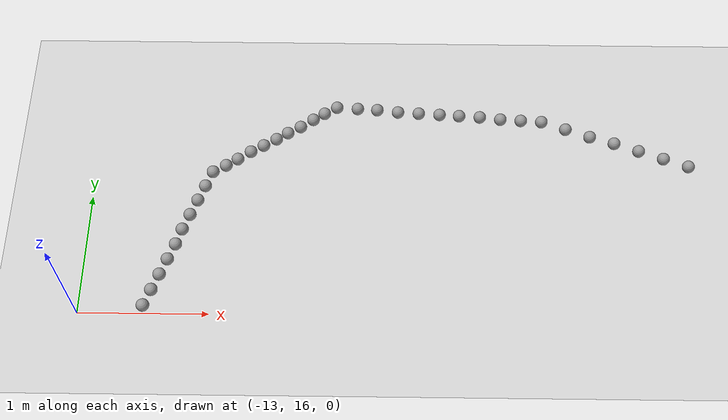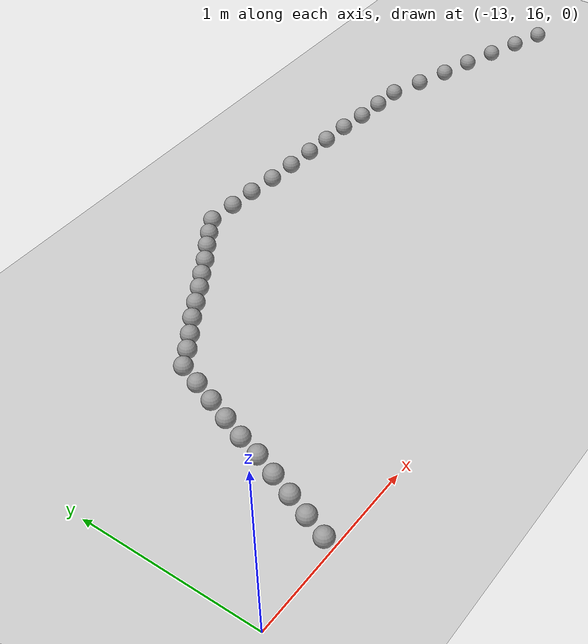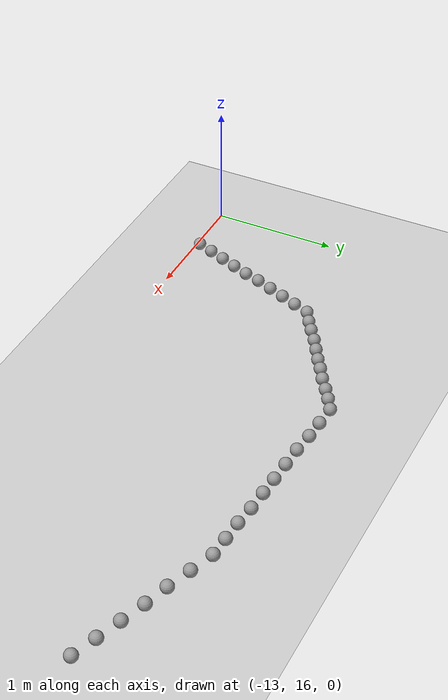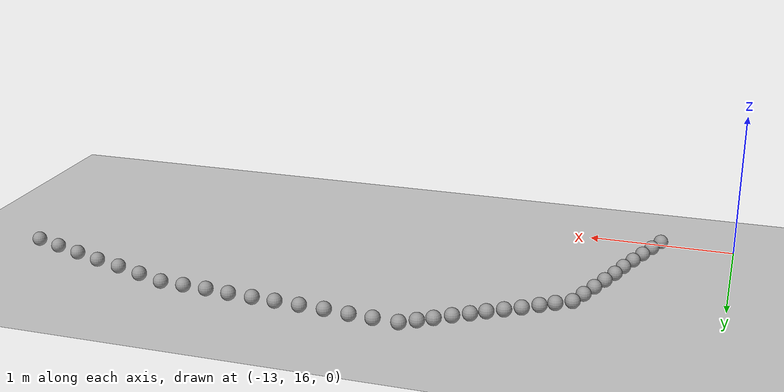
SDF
<sdf version="1.6">
 <world name="default">
  <model name="ground_plane">
   <static>1</static>
   <link name="link">
    <collision name="collision">
     <geometry><plane><normal>0 0 1</normal><size>100 100</size></plane></geometry>
     <surface><friction><ode><mu>100</mu><mu2>50</mu2></ode></friction></surface>
    </collision>
    <visual name="visual">
     <cast_shadows>0</cast_shadows>
     <geometry><plane><normal>0 0 1</normal><size>100 100</size></plane></geometry>
     <material>
      <script><uri>file://media/materials/scripts/gazebo.material</uri><name>Gazebo/Grey</name></script>
     </material>
    </visual>
   </link>
  </model>
  <model name="unit_sphere_0_114">
   <pose>-8.262000 17.310000 0.050000 0 -0 0</pose>
   <link name="link">
    <inertial>
     <mass>1</mass>
     <inertia><ixx>0.1</ixx><ixy>0</ixy><ixz>0</ixz><iyy>0.1</iyy><iyz>0</iyz><izz>0.1</izz></inertia>
    </inertial>
    <collision name="collision"><geometry><sphere><radius>0.050000</radius></sphere></geometry></collision>
    <visual name="visual">
     <geometry><sphere><radius>0.050000</radius></sphere></geometry>
     <material>
      <script><name>Gazebo/Grey</name><uri>file://media/materials/scripts/gazebo.material</uri></script>
     </material>
    </visual>
   </link>
  </model>
  <model name="unit_sphere_0_115">
   <pose>-8.455000 17.380000 0.050000 0 -0 0</pose>
   <link name="link">
    <inertial>
     <mass>1</mass>
     <inertia><ixx>0.1</ixx><ixy>0</ixy><ixz>0</ixz><iyy>0.1</iyy><iyz>0</iyz><izz>0.1</izz></inertia>
    </inertial>
    <collision name="collision"><geometry><sphere><radius>0.050000</radius></sphere></geometry></collision>
    <visual name="visual">
     <geometry><sphere><radius>0.050000</radius></sphere></geometry>
     <material>
      <script><name>Gazebo/Grey</name><uri>file://media/materials/scripts/gazebo.material</uri></script>
     </material>
    </visual>
   </link>
  </model>
  <model name="unit_sphere_0_116">
   <pose>-8.648000 17.450000 0.050000 0 -0 0</pose>
   <link name="link">
    <inertial>
     <mass>1</mass>
     <inertia><ixx>0.1</ixx><ixy>0</ixy><ixz>0</ixz><iyy>0.1</iyy><iyz>0</iyz><izz>0.1</izz></inertia>
    </inertial>
    <collision name="collision"><geometry><sphere><radius>0.050000</radius></sphere></geometry></collision>
    <visual name="visual">
     <geometry><sphere><radius>0.050000</radius></sphere></geometry>
     <material>
      <script><name>Gazebo/Grey</name><uri>file://media/materials/scripts/gazebo.material</uri></script>
     </material>
    </visual>
   </link>
  </model>
  <model name="unit_sphere_0_117">
   <pose>-8.841000 17.520000 0.050000 0 -0 0</pose>
   <link name="link">
    <inertial>
     <mass>1</mass>
     <inertia><ixx>0.1</ixx><ixy>0</ixy><ixz>0</ixz><iyy>0.1</iyy><iyz>0</iyz><izz>0.1</izz></inertia>
    </inertial>
    <collision name="collision"><geometry><sphere><radius>0.050000</radius></sphere></geometry></collision>
    <visual name="visual">
     <geometry><sphere><radius>0.050000</radius></sphere></geometry>
     <material>
      <script><name>Gazebo/Grey</name><uri>file://media/materials/scripts/gazebo.material</uri></script>
     </material>
    </visual>
   </link>
  </model>
  <model name="unit_sphere_0_118">
   <pose>-9.034000 17.580000 0.050000 0 -0 0</pose>
   <link name="link">
    <inertial>
     <mass>1</mass>
     <inertia><ixx>0.1</ixx><ixy>0</ixy><ixz>0</ixz><iyy>0.1</iyy><iyz>0</iyz><izz>0.1</izz></inertia>
    </inertial>
    <collision name="collision"><geometry><sphere><radius>0.050000</radius></sphere></geometry></collision>
    <visual name="visual">
     <geometry><sphere><radius>0.050000</radius></sphere></geometry>
     <material>
      <script><name>Gazebo/Grey</name><uri>file://media/materials/scripts/gazebo.material</uri></script>
     </material>
    </visual>
   </link>
  </model>
  <model name="unit_sphere_0_119">
   <pose>-9.227000 17.650000 0.050000 0 -0 0</pose>
   <link name="link">
    <inertial>
     <mass>1</mass>
     <inertia><ixx>0.1</ixx><ixy>0</ixy><ixz>0</ixz><iyy>0.1</iyy><iyz>0</iyz><izz>0.1</izz></inertia>
    </inertial>
    <collision name="collision"><geometry><sphere><radius>0.050000</radius></sphere></geometry></collision>
    <visual name="visual">
     <geometry><sphere><radius>0.050000</radius></sphere></geometry>
     <material>
      <script><name>Gazebo/Grey</name><uri>file://media/materials/scripts/gazebo.material</uri></script>
     </material>
    </visual>
   </link>
  </model>
  <model name="unit_sphere_0_120">
   <pose>-9.420000 17.720000 0.050000 0 -0 0</pose>
   <link name="link">
    <inertial>
     <mass>1</mass>
     <inertia><ixx>0.1</ixx><ixy>0</ixy><ixz>0</ixz><iyy>0.1</iyy><iyz>0</iyz><izz>0.1</izz></inertia>
    </inertial>
    <collision name="collision"><geometry><sphere><radius>0.050000</radius></sphere></geometry></collision>
    <visual name="visual">
     <geometry><sphere><radius>0.050000</radius></sphere></geometry>
     <material>
      <script><name>Gazebo/Grey</name><uri>file://media/materials/scripts/gazebo.material</uri></script>
     </material>
    </visual>
   </link>
  </model>
  <model name="unit_sphere_0_121">
   <pose>-9.587000 17.730000 0.050000 0 -0 0</pose>
   <link name="link">
    <inertial>
     <mass>1</mass>
     <inertia><ixx>0.1</ixx><ixy>0</ixy><ixz>0</ixz><iyy>0.1</iyy><iyz>0</iyz><izz>0.1</izz></inertia>
    </inertial>
    <collision name="collision"><geometry><sphere><radius>0.050000</radius></sphere></geometry></collision>
    <visual name="visual">
     <geometry><sphere><radius>0.050000</radius></sphere></geometry>
     <material>
      <script><name>Gazebo/Grey</name><uri>file://media/materials/scripts/gazebo.material</uri></script>
     </material>
    </visual>
   </link>
  </model>
  <model name="unit_sphere_0_122">
   <pose>-9.754000 17.740000 0.050000 0 -0 0</pose>
   <link name="link">
    <inertial>
     <mass>1</mass>
     <inertia><ixx>0.1</ixx><ixy>0</ixy><ixz>0</ixz><iyy>0.1</iyy><iyz>0</iyz><izz>0.1</izz></inertia>
    </inertial>
    <collision name="collision"><geometry><sphere><radius>0.050000</radius></sphere></geometry></collision>
    <visual name="visual">
     <geometry><sphere><radius>0.050000</radius></sphere></geometry>
     <material>
      <script><name>Gazebo/Grey</name><uri>file://media/materials/scripts/gazebo.material</uri></script>
     </material>
    </visual>
   </link>
  </model>
  <model name="unit_sphere_0_123">
   <pose>-9.921000 17.760000 0.050000 0 -0 0</pose>
   <link name="link">
    <inertial>
     <mass>1</mass>
     <inertia><ixx>0.1</ixx><ixy>0</ixy><ixz>0</ixz><iyy>0.1</iyy><iyz>0</iyz><izz>0.1</izz></inertia>
    </inertial>
    <collision name="collision"><geometry><sphere><radius>0.050000</radius></sphere></geometry></collision>
    <visual name="visual">
     <geometry><sphere><radius>0.050000</radius></sphere></geometry>
     <material>
      <script><name>Gazebo/Grey</name><uri>file://media/materials/scripts/gazebo.material</uri></script>
     </material>
    </visual>
   </link>
  </model>
  <model name="unit_sphere_0_124">
   <pose>-10.090000 17.770000 0.050000 0 -0 0</pose>
   <link name="link">
    <inertial>
     <mass>1</mass>
     <inertia><ixx>0.1</ixx><ixy>0</ixy><ixz>0</ixz><iyy>0.1</iyy><iyz>0</iyz><izz>0.1</izz></inertia>
    </inertial>
    <collision name="collision"><geometry><sphere><radius>0.050000</radius></sphere></geometry></collision>
    <visual name="visual">
     <geometry><sphere><radius>0.050000</radius></sphere></geometry>
     <material>
      <script><name>Gazebo/Grey</name><uri>file://media/materials/scripts/gazebo.material</uri></script>
     </material>
    </visual>
   </link>
  </model>
  <model name="unit_sphere_0_125">
   <pose>-10.250000 17.780000 0.050000 0 -0 0</pose>
   <link name="link">
    <inertial>
     <mass>1</mass>
     <inertia><ixx>0.1</ixx><ixy>0</ixy><ixz>0</ixz><iyy>0.1</iyy><iyz>0</iyz><izz>0.1</izz></inertia>
    </inertial>
    <collision name="collision"><geometry><sphere><radius>0.050000</radius></sphere></geometry></collision>
    <visual name="visual">
     <geometry><sphere><radius>0.050000</radius></sphere></geometry>
     <material>
      <script><name>Gazebo/Grey</name><uri>file://media/materials/scripts/gazebo.material</uri></script>
     </material>
    </visual>
   </link>
  </model>
  <model name="unit_sphere_0_126">
   <pose>-10.420000 17.790000 0.050000 0 -0 0</pose>
   <link name="link">
    <inertial>
     <mass>1</mass>
     <inertia><ixx>0.1</ixx><ixy>0</ixy><ixz>0</ixz><iyy>0.1</iyy><iyz>0</iyz><izz>0.1</izz></inertia>
    </inertial>
    <collision name="collision"><geometry><sphere><radius>0.050000</radius></sphere></geometry></collision>
    <visual name="visual">
     <geometry><sphere><radius>0.050000</radius></sphere></geometry>
     <material>
      <script><name>Gazebo/Grey</name><uri>file://media/materials/scripts/gazebo.material</uri></script>
     </material>
    </visual>
   </link>
  </model>
  <model name="unit_sphere_0_127">
   <pose>-10.590000 17.800000 0.050000 0 -0 0</pose>
   <link name="link">
    <inertial>
     <mass>1</mass>
     <inertia><ixx>0.1</ixx><ixy>0</ixy><ixz>0</ixz><iyy>0.1</iyy><iyz>0</iyz><izz>0.1</izz></inertia>
    </inertial>
    <collision name="collision"><geometry><sphere><radius>0.050000</radius></sphere></geometry></collision>
    <visual name="visual">
     <geometry><sphere><radius>0.050000</radius></sphere></geometry>
     <material>
      <script><name>Gazebo/Grey</name><uri>file://media/materials/scripts/gazebo.material</uri></script>
     </material>
    </visual>
   </link>
  </model>
  <model name="unit_sphere_0_128">
   <pose>-10.760000 17.820000 0.050000 0 -0 0</pose>
   <link name="link">
    <inertial>
     <mass>1</mass>
     <inertia><ixx>0.1</ixx><ixy>0</ixy><ixz>0</ixz><iyy>0.1</iyy><iyz>0</iyz><izz>0.1</izz></inertia>
    </inertial>
    <collision name="collision"><geometry><sphere><radius>0.050000</radius></sphere></geometry></collision>
    <visual name="visual">
     <geometry><sphere><radius>0.050000</radius></sphere></geometry>
     <material>
      <script><name>Gazebo/Grey</name><uri>file://media/materials/scripts/gazebo.material</uri></script>
     </material>
    </visual>
   </link>
  </model>
  <model name="unit_sphere_0_129">
   <pose>-10.920000 17.830000 0.050000 0 -0 0</pose>
   <link name="link">
    <inertial>
     <mass>1</mass>
     <inertia><ixx>0.1</ixx><ixy>0</ixy><ixz>0</ixz><iyy>0.1</iyy><iyz>0</iyz><izz>0.1</izz></inertia>
    </inertial>
    <collision name="collision"><geometry><sphere><radius>0.050000</radius></sphere></geometry></collision>
    <visual name="visual">
     <geometry><sphere><radius>0.050000</radius></sphere></geometry>
     <material>
      <script><name>Gazebo/Grey</name><uri>file://media/materials/scripts/gazebo.material</uri></script>
     </material>
    </visual>
   </link>
  </model>
  <model name="unit_sphere_0_130">
   <pose>-11.090000 17.840000 0.050000 0 -0 0</pose>
   <link name="link">
    <inertial>
     <mass>1</mass>
     <inertia><ixx>0.1</ixx><ixy>0</ixy><ixz>0</ixz><iyy>0.1</iyy><iyz>0</iyz><izz>0.1</izz></inertia>
    </inertial>
    <collision name="collision"><geometry><sphere><radius>0.050000</radius></sphere></geometry></collision>
    <visual name="visual">
     <geometry><sphere><radius>0.050000</radius></sphere></geometry>
     <material>
      <script><name>Gazebo/Grey</name><uri>file://media/materials/scripts/gazebo.material</uri></script>
     </material>
    </visual>
   </link>
  </model>
  <model name="unit_sphere_0_131">
   <pose>-11.190000 17.780000 0.050000 0 -0 0</pose>
   <link name="link">
    <inertial>
     <mass>1</mass>
     <inertia><ixx>0.1</ixx><ixy>0</ixy><ixz>0</ixz><iyy>0.1</iyy><iyz>0</iyz><izz>0.1</izz></inertia>
    </inertial>
    <collision name="collision"><geometry><sphere><radius>0.050000</radius></sphere></geometry></collision>
    <visual name="visual">
     <geometry><sphere><radius>0.050000</radius></sphere></geometry>
     <material>
      <script><name>Gazebo/Grey</name><uri>file://media/materials/scripts/gazebo.material</uri></script>
     </material>
    </visual>
   </link>
  </model>
  <model name="unit_sphere_0_132">
   <pose>-11.280000 17.720000 0.050000 0 -0 0</pose>
   <link name="link">
    <inertial>
     <mass>1</mass>
     <inertia><ixx>0.1</ixx><ixy>0</ixy><ixz>0</ixz><iyy>0.1</iyy><iyz>0</iyz><izz>0.1</izz></inertia>
    </inertial>
    <collision name="collision"><geometry><sphere><radius>0.050000</radius></sphere></geometry></collision>
    <visual name="visual">
     <geometry><sphere><radius>0.050000</radius></sphere></geometry>
     <material>
      <script><name>Gazebo/Grey</name><uri>file://media/materials/scripts/gazebo.material</uri></script>
     </material>
    </visual>
   </link>
  </model>
  <model name="unit_sphere_0_133">
   <pose>-11.380000 17.650000 0.050000 0 -0 0</pose>
   <link name="link">
    <inertial>
     <mass>1</mass>
     <inertia><ixx>0.1</ixx><ixy>0</ixy><ixz>0</ixz><iyy>0.1</iyy><iyz>0</iyz><izz>0.1</izz></inertia>
    </inertial>
    <collision name="collision"><geometry><sphere><radius>0.050000</radius></sphere></geometry></collision>
    <visual name="visual">
     <geometry><sphere><radius>0.050000</radius></sphere></geometry>
     <material>
      <script><name>Gazebo/Grey</name><uri>file://media/materials/scripts/gazebo.material</uri></script>
     </material>
    </visual>
   </link>
  </model>
  <model name="unit_sphere_0_134">
   <pose>-11.480000 17.590000 0.050000 0 -0 0</pose>
   <link name="link">
    <inertial>
     <mass>1</mass>
     <inertia><ixx>0.1</ixx><ixy>0</ixy><ixz>0</ixz><iyy>0.1</iyy><iyz>0</iyz><izz>0.1</izz></inertia>
    </inertial>
    <collision name="collision"><geometry><sphere><radius>0.050000</radius></sphere></geometry></collision>
    <visual name="visual">
     <geometry><sphere><radius>0.050000</radius></sphere></geometry>
     <material>
      <script><name>Gazebo/Grey</name><uri>file://media/materials/scripts/gazebo.material</uri></script>
     </material>
    </visual>
   </link>
  </model>
  <model name="unit_sphere_0_135">
   <pose>-11.570000 17.530000 0.050000 0 -0 0</pose>
   <link name="link">
    <inertial>
     <mass>1</mass>
     <inertia><ixx>0.1</ixx><ixy>0</ixy><ixz>0</ixz><iyy>0.1</iyy><iyz>0</iyz><izz>0.1</izz></inertia>
    </inertial>
    <collision name="collision"><geometry><sphere><radius>0.050000</radius></sphere></geometry></collision>
    <visual name="visual">
     <geometry><sphere><radius>0.050000</radius></sphere></geometry>
     <material>
      <script><name>Gazebo/Grey</name><uri>file://media/materials/scripts/gazebo.material</uri></script>
     </material>
    </visual>
   </link>
  </model>
  <model name="unit_sphere_0_136">
   <pose>-11.670000 17.470000 0.050000 0 -0 0</pose>
   <link name="link">
    <inertial>
     <mass>1</mass>
     <inertia><ixx>0.1</ixx><ixy>0</ixy><ixz>0</ixz><iyy>0.1</iyy><iyz>0</iyz><izz>0.1</izz></inertia>
    </inertial>
    <collision name="collision"><geometry><sphere><radius>0.050000</radius></sphere></geometry></collision>
    <visual name="visual">
     <geometry><sphere><radius>0.050000</radius></sphere></geometry>
     <material>
      <script><name>Gazebo/Grey</name><uri>file://media/materials/scripts/gazebo.material</uri></script>
     </material>
    </visual>
   </link>
  </model>
  <model name="unit_sphere_0_137">
   <pose>-11.770000 17.410000 0.050000 0 -0 0</pose>
   <link name="link">
    <inertial>
     <mass>1</mass>
     <inertia><ixx>0.1</ixx><ixy>0</ixy><ixz>0</ixz><iyy>0.1</iyy><iyz>0</iyz><izz>0.1</izz></inertia>
    </inertial>
    <collision name="collision"><geometry><sphere><radius>0.050000</radius></sphere></geometry></collision>
    <visual name="visual">
     <geometry><sphere><radius>0.050000</radius></sphere></geometry>
     <material>
      <script><name>Gazebo/Grey</name><uri>file://media/materials/scripts/gazebo.material</uri></script>
     </material>
    </visual>
   </link>
  </model>
  <model name="unit_sphere_0_138">
   <pose>-11.870000 17.340000 0.050000 0 -0 0</pose>
   <link name="link">
    <inertial>
     <mass>1</mass>
     <inertia><ixx>0.1</ixx><ixy>0</ixy><ixz>0</ixz><iyy>0.1</iyy><iyz>0</iyz><izz>0.1</izz></inertia>
    </inertial>
    <collision name="collision"><geometry><sphere><radius>0.050000</radius></sphere></geometry></collision>
    <visual name="visual">
     <geometry><sphere><radius>0.050000</radius></sphere></geometry>
     <material>
      <script><name>Gazebo/Grey</name><uri>file://media/materials/scripts/gazebo.material</uri></script>
     </material>
    </visual>
   </link>
  </model>
  <model name="unit_sphere_0_139">
   <pose>-11.960000 17.280000 0.050000 0 -0 0</pose>
   <link name="link">
    <inertial>
     <mass>1</mass>
     <inertia><ixx>0.1</ixx><ixy>0</ixy><ixz>0</ixz><iyy>0.1</iyy><iyz>0</iyz><izz>0.1</izz></inertia>
    </inertial>
    <collision name="collision"><geometry><sphere><radius>0.050000</radius></sphere></geometry></collision>
    <visual name="visual">
     <geometry><sphere><radius>0.050000</radius></sphere></geometry>
     <material>
      <script><name>Gazebo/Grey</name><uri>file://media/materials/scripts/gazebo.material</uri></script>
     </material>
    </visual>
   </link>
  </model>
  <model name="unit_sphere_0_140">
   <pose>-12.060000 17.220000 0.050000 0 -0 0</pose>
   <link name="link">
    <inertial>
     <mass>1</mass>
     <inertia><ixx>0.1</ixx><ixy>0</ixy><ixz>0</ixz><iyy>0.1</iyy><iyz>0</iyz><izz>0.1</izz></inertia>
    </inertial>
    <collision name="collision"><geometry><sphere><radius>0.050000</radius></sphere></geometry></collision>
    <visual name="visual">
     <geometry><sphere><radius>0.050000</radius></sphere></geometry>
     <material>
      <script><name>Gazebo/Grey</name><uri>file://media/materials/scripts/gazebo.material</uri></script>
     </material>
    </visual>
   </link>
  </model>
  <model name="unit_sphere_0_141">
   <pose>-12.110000 17.090000 0.050000 0 -0 0</pose>
   <link name="link">
    <inertial>
     <mass>1</mass>
     <inertia><ixx>0.1</ixx><ixy>0</ixy><ixz>0</ixz><iyy>0.1</iyy><iyz>0</iyz><izz>0.1</izz></inertia>
    </inertial>
    <collision name="collision"><geometry><sphere><radius>0.050000</radius></sphere></geometry></collision>
    <visual name="visual">
     <geometry><sphere><radius>0.050000</radius></sphere></geometry>
     <material>
      <script><name>Gazebo/Grey</name><uri>file://media/materials/scripts/gazebo.material</uri></script>
     </material>
    </visual>
   </link>
  </model>
  <model name="unit_sphere_0_142">
   <pose>-12.160000 16.960000 0.050000 0 -0 0</pose>
   <link name="link">
    <inertial>
     <mass>1</mass>
     <inertia><ixx>0.1</ixx><ixy>0</ixy><ixz>0</ixz><iyy>0.1</iyy><iyz>0</iyz><izz>0.1</izz></inertia>
    </inertial>
    <collision name="collision"><geometry><sphere><radius>0.050000</radius></sphere></geometry></collision>
    <visual name="visual">
     <geometry><sphere><radius>0.050000</radius></sphere></geometry>
     <material>
      <script><name>Gazebo/Grey</name><uri>file://media/materials/scripts/gazebo.material</uri></script>
     </material>
    </visual>
   </link>
  </model>
  <model name="unit_sphere_0_143">
   <pose>-12.210000 16.830000 0.050000 0 -0 0</pose>
   <link name="link">
    <inertial>
     <mass>1</mass>
     <inertia><ixx>0.1</ixx><ixy>0</ixy><ixz>0</ixz><iyy>0.1</iyy><iyz>0</iyz><izz>0.1</izz></inertia>
    </inertial>
    <collision name="collision"><geometry><sphere><radius>0.050000</radius></sphere></geometry></collision>
    <visual name="visual">
     <geometry><sphere><radius>0.050000</radius></sphere></geometry>
     <material>
      <script><name>Gazebo/Grey</name><uri>file://media/materials/scripts/gazebo.material</uri></script>
     </material>
    </visual>
   </link>
  </model>
  <model name="unit_sphere_0_144">
   <pose>-12.260000 16.700000 0.050000 0 -0 0</pose>
   <link name="link">
    <inertial>
     <mass>1</mass>
     <inertia><ixx>0.1</ixx><ixy>0</ixy><ixz>0</ixz><iyy>0.1</iyy><iyz>0</iyz><izz>0.1</izz></inertia>
    </inertial>
    <collision name="collision"><geometry><sphere><radius>0.050000</radius></sphere></geometry></collision>
    <visual name="visual">
     <geometry><sphere><radius>0.050000</radius></sphere></geometry>
     <material>
      <script><name>Gazebo/Grey</name><uri>file://media/materials/scripts/gazebo.material</uri></script>
     </material>
    </visual>
   </link>
  </model>
  <model name="unit_sphere_0_145">
   <pose>-12.300000 16.570000 0.050000 0 -0 0</pose>
   <link name="link">
    <inertial>
     <mass>1</mass>
     <inertia><ixx>0.1</ixx><ixy>0</ixy><ixz>0</ixz><iyy>0.1</iyy><iyz>0</iyz><izz>0.1</izz></inertia>
    </inertial>
    <collision name="collision"><geometry><sphere><radius>0.050000</radius></sphere></geometry></collision>
    <visual name="visual">
     <geometry><sphere><radius>0.050000</radius></sphere></geometry>
     <material>
      <script><name>Gazebo/Grey</name><uri>file://media/materials/scripts/gazebo.material</uri></script>
     </material>
    </visual>
   </link>
  </model>
  <model name="unit_sphere_0_146">
   <pose>-12.350000 16.440000 0.050000 0 -0 0</pose>
   <link name="link">
    <inertial>
     <mass>1</mass>
     <inertia><ixx>0.1</ixx><ixy>0</ixy><ixz>0</ixz><iyy>0.1</iyy><iyz>0</iyz><izz>0.1</izz></inertia>
    </inertial>
    <collision name="collision"><geometry><sphere><radius>0.050000</radius></sphere></geometry></collision>
    <visual name="visual">
     <geometry><sphere><radius>0.050000</radius></sphere></geometry>
     <material>
      <script><name>Gazebo/Grey</name><uri>file://media/materials/scripts/gazebo.material</uri></script>
     </material>
    </visual>
   </link>
  </model>
  <model name="unit_sphere_0_147">
   <pose>-12.400000 16.310000 0.050000 0 -0 0</pose>
   <link name="link">
    <inertial>
     <mass>1</mass>
     <inertia><ixx>0.1</ixx><ixy>0</ixy><ixz>0</ixz><iyy>0.1</iyy><iyz>0</iyz><izz>0.1</izz></inertia>
    </inertial>
    <collision name="collision"><geometry><sphere><radius>0.050000</radius></sphere></geometry></collision>
    <visual name="visual">
     <geometry><sphere><radius>0.050000</radius></sphere></geometry>
     <material>
      <script><name>Gazebo/Grey</name><uri>file://media/materials/scripts/gazebo.material</uri></script>
     </material>
    </visual>
   </link>
  </model>
  <model name="unit_sphere_0_148">
   <pose>-12.450000 16.180000 0.050000 0 -0 0</pose>
   <link name="link">
    <inertial>
     <mass>1</mass>
     <inertia><ixx>0.1</ixx><ixy>0</ixy><ixz>0</ixz><iyy>0.1</iyy><iyz>0</iyz><izz>0.1</izz></inertia>
    </inertial>
    <collision name="collision"><geometry><sphere><radius>0.050000</radius></sphere></geometry></collision>
    <visual name="visual">
     <geometry><sphere><radius>0.050000</radius></sphere></geometry>
     <material>
      <script><name>Gazebo/Grey</name><uri>file://media/materials/scripts/gazebo.material</uri></script>
     </material>
    </visual>
   </link>
  </model>
  <model name="unit_sphere_0_149">
   <pose>-12.500000 16.050000 0.050000 0 -0 0</pose>
   <link name="link">
    <inertial>
     <mass>1</mass>
     <inertia><ixx>0.1</ixx><ixy>0</ixy><ixz>0</ixz><iyy>0.1</iyy><iyz>0</iyz><izz>0.1</izz></inertia>
    </inertial>
    <collision name="collision"><geometry><sphere><radius>0.050000</radius></sphere></geometry></collision>
    <visual name="visual">
     <geometry><sphere><radius>0.050000</radius></sphere></geometry>
     <material>
      <script><name>Gazebo/Grey</name><uri>file://media/materials/scripts/gazebo.material</uri></script>
     </material>
    </visual>
   </link>
  </model>
 </world>
</sdf>
